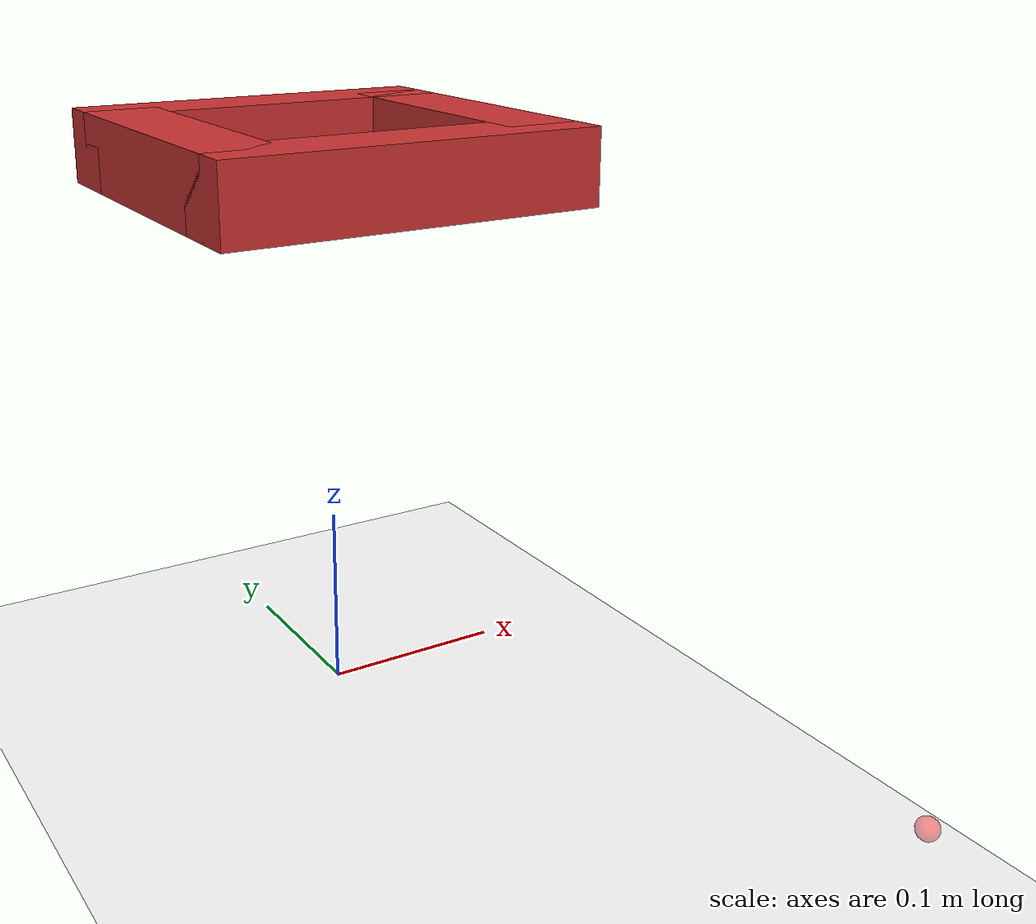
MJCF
<mujoco model="t_block_dual">
  <asset>
    <!-- Checker texture (dark gray / light gray) -->
    <texture name="tex_floor_checker" type="2d" builtin="checker"
             width="512" height="512"
             rgb1="0.90 0.90 0.90" rgb2="0.78 0.78 0.78"/>

    <!-- Material using that texture -->
    <material name="mat_floor_checker"
              texture="tex_floor_checker"
              texrepeat="20 20" texuniform="true"
              reflectance="0.05" shininess="0.2" specular="0.1"
              rgba="1 1 1 1"/>
  </asset>

  <compiler angle="radian"/>
  <option timestep="0.01"/>
  <default>
    <geom friction="0.5 0.005 0.0001" density="1000"/>
  </default>

  <worldbody>
    <light name="scene_light" pos="0 0 1.5" dir="0 0 -1" directional="true"/>
    <geom name="floor" type="plane" size="5 5 0.1" pos="0 0 0"
          material="mat_floor_checker" rgba="1 1 1 1"/>

    <!-- Visible body for your siconos-driven state -->
    <body name="T_siconos" pos="0 0 0.3">
      <freejoint name="root_siconos"/>

      <!-- Top bar -->
      <geom name="K_top_s" type="box"
            size="0.10 0.02 0.02"
            pos="0 0.08 0"
            rgba="0.8 0.2 0.2 1"
            contype="0" conaffinity="0"/>

      <!-- Bottom bar -->
      <geom name="K_bottom_s" type="box"
            size="0.10 0.02 0.02"
            pos="0 -0.08 0"
            rgba="0.8 0.2 0.2 1"
            contype="0" conaffinity="0"/>

      <!-- Left bar -->
      <geom name="K_left_s" type="box"
            size="0.02 0.08 0.02"
            pos="-0.08 0 0"
            rgba="0.8 0.2 0.2 1"
            contype="0" conaffinity="0"/>

      <!-- Right bar -->
      <geom name="K_right_s" type="box"
            size="0.02 0.08 0.02"
            pos="0.08 0 0"
            rgba="0.8 0.2 0.2 1"
            contype="0" conaffinity="0"/>
    </body>

    <!-- Invisible duplicate body (for mujoco visual sync / debug) -->
    <body name="T_mujoco" pos="0 0 0.3">
      <freejoint name="root_mujoco"/>

      <!-- Top bar -->
      <geom name="K_top_m" type="box"
            size="0.10 0.02 0.02"
            pos="0 0.08 0"
            rgba="0.8 0.2 0.2 0.0"/>

      <!-- Bottom bar -->
      <geom name="K_bottom_m" type="box"
            size="0.10 0.02 0.02"
            pos="0 -0.08 0"
            rgba="0.8 0.2 0.2 0.0"/>

      <!-- Left bar -->
      <geom name="K_left_m" type="box"
            size="0.02 0.08 0.02"
            pos="-0.08 0 0"
            rgba="0.8 0.2 0.2 0.0"/>

      <!-- Right bar -->
      <geom name="K_right_m" type="box"
            size="0.02 0.08 0.02"
            pos="0.08 0 0"
            rgba="0.8 0.2 0.2 0.0"/>
    </body>

    <body name="target_mocap" mocap="true" pos="0.08 -0.35 0.08">
      <geom type="sphere" size="0.005" rgba="1 0 0 0.4" contype="0" conaffinity="0"/>
    </body>

  </worldbody>
</mujoco>
